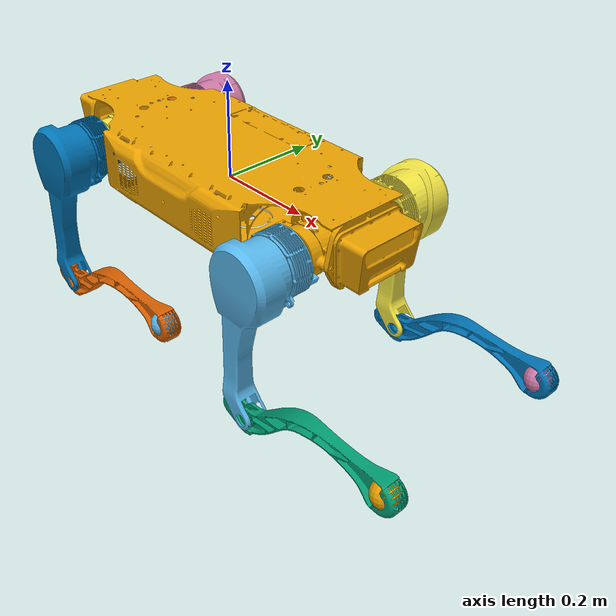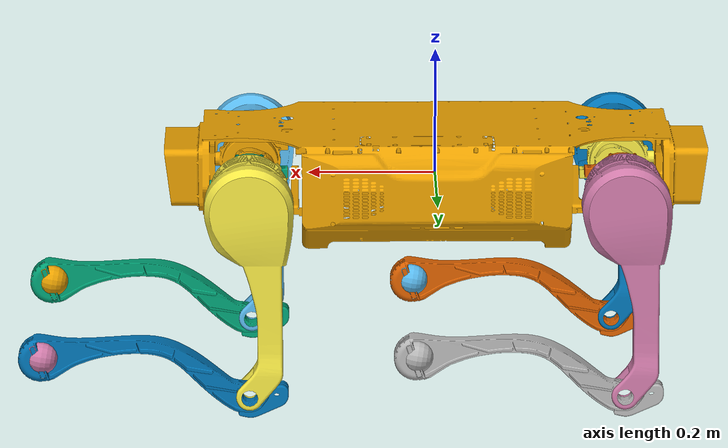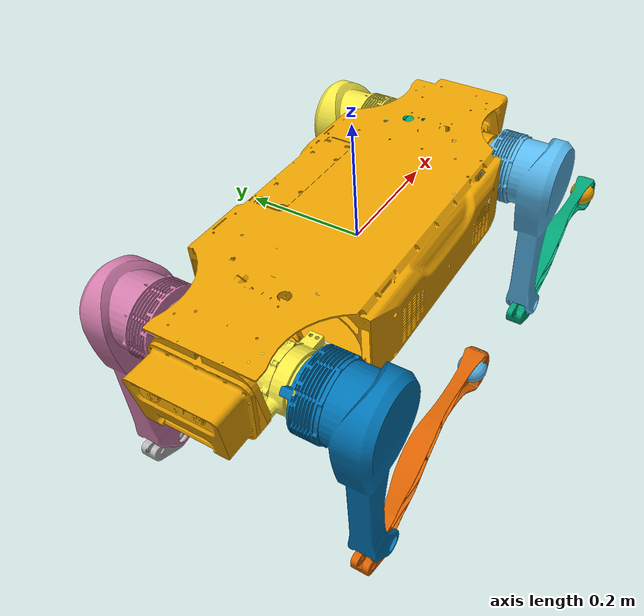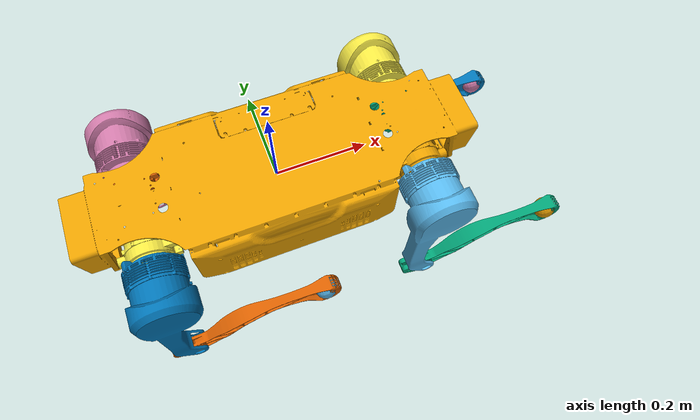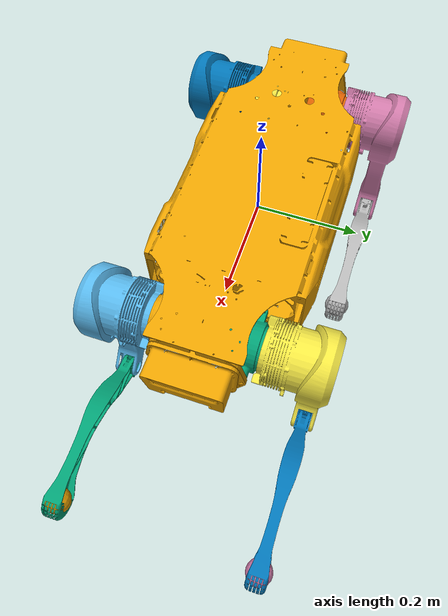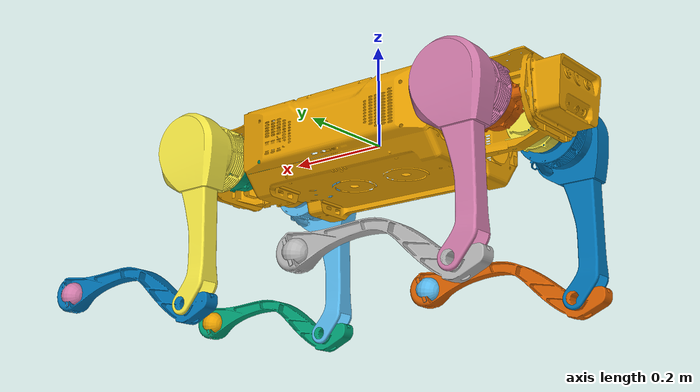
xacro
<?xml version="1.0" encoding="utf-8"?>
<robot name="x20" xmlns:xacro="http://www.ros.org/wiki/xacro">
  <xacro:property name="motor_damp" value="0.0"/>
  <xacro:property name="motor_fric" value="0.0"/>

  <xacro:include filename="$(find x20_description)/urdf/gazebo.xacro" />

  <link name="body">
    <inertial>
      <origin
        xyz="0.005 0.000413 0.004"
        rpy="0 0 0" />
      <mass
        value="26.398" />
      <inertia ixx="0.1632" ixy="-5.2136E-05" ixz="-0.00019406" iyy="0.40648" iyz="8.2679E-05" izz="0.52596" />
    </inertial>
    <visual>
      <geometry>
        <mesh
          filename="package://x20_description/meshes/x20_torso.stl" />
      </geometry>
    </visual>
    <collision name="body_collision">
      <geometry>
        <mesh
          filename="package://x20_description/meshes/x20_torso.stl" />
      </geometry>
    </collision>
  </link>

  <link name="imu_link">
    <inertial>
      <mass value="0.0000001"/>
      <origin rpy="0 0 0" xyz="0 0 0"/>
      <inertia ixx="0.0000000001" ixy="0" ixz="0" iyy="0.00000000001" iyz="0" izz="0.000000001"/>
    </inertial>
  <visual>
    <origin rpy="0 0 0" xyz="0 0 0"/>
    <geometry>
      <box size="0.001 0.001 0.001"/>
    </geometry>
  </visual>
 </link>
 <joint name="imu_joint" type="fixed">
    <axis xyz="0 0 0"/>
    <origin xyz="0 0 0"/>
    <parent link="body"/>
    <child link="imu_link"/>
  </joint>

  <link name="hip0">
    <inertial>
      <origin xyz="-0.00075689 -0.0089129 -5.0528E-05" />
      <mass value="1.5767" />
      <inertia ixx="0.0012141" ixy="6.1989E-06" ixz="2.8652E-06" iyy="0.0016912" iyz="3.7E-06" izz="0.0013431" />
    </inertial>
    <visual>
      <geometry>
        <mesh filename="package://x20_description/meshes/x20_fl_hip.stl" />
      </geometry>
    </visual>
    <collision name="hip0_collision">
      <geometry>
        <mesh filename="package://x20_description/meshes/x20_fl_hip.stl" />
      </geometry>
    </collision>
  </link>

  <joint name="8" type="revolute">
    <origin xyz="0.292 0.08 0" />
    <parent link="body" />
    <child link="hip0" />
    <axis xyz="1 0 0" />
    <limit
      lower="-0.38397"
      upper="0.38397"
      effort="126.1"
      velocity="12"  />
    <dynamics
      damping="${motor_damp}"
      friction="${motor_fric}" />
  </joint>

  <link name="upper0">
    <inertial>
      <origin xyz="-0.0025264 -0.022118 -0.0292" />
      <mass value="3.0063" />
      <inertia ixx="0.0058102" ixy="4.2848E-05" ixz="-3.0437E-06" iyy="0.0080686" iyz="-6.889E-05" izz="0.003874" />
    </inertial>
    <visual>
      <geometry>
        <mesh filename="package://x20_description/meshes/x20_l_thigh.stl" />
      </geometry>
    </visual>
    <collision name="upper0_collision">
      <geometry>
        <mesh filename="package://x20_description/meshes/x20_l_thigh.stl" />
      </geometry>
    </collision>
  </link>

  <joint name="0" type="revolute">
    <origin xyz="0 0.12325 0" />
    <parent link="hip0" />
    <child link="upper0" />
    <axis xyz="0 -1 0" />
    <limit
      lower="-2.75762"
      upper="0.48869"
      effort="111.4"
      velocity="19"/>
    <dynamics
      damping="${motor_damp}"
      friction="${motor_fric}" />
  </joint>

  <link name="lower0">
    <inertial>
      <origin xyz="0.0075224 2.5888E-05 -0.17586" />
      <mass value="0.54849" />
      <inertia ixx="0.0057" ixy="1.16E-07" ixz="0.000153" iyy="0.006" iyz="-1.12E-06" izz="0.00029" />
    </inertial>
    <visual>
      <geometry>
        <mesh filename="package://x20_description/meshes/x20_shank.stl" />
      </geometry>
    </visual>
    <collision name="lower0_collision">
      <geometry>
        <mesh filename="package://x20_description/meshes/x20_shank.stl" />
      </geometry>
    </collision>
  </link>

  <joint name="1" type="revolute">
    <origin xyz="0 0 -0.3" />
    <parent link="upper0" />
    <child link="lower0" />
    <axis xyz="0 -1 0" />
    <limit
      lower="0.66322"
      upper="2.84488"
      effort="195.8"
      velocity="19"  />
    <dynamics
      damping="${motor_damp}"
      friction="${motor_fric}" />
  </joint>

  <link name="hip1">
    <inertial>
      <origin xyz="0.000757 -0.009 5.053E-05" />
      <mass value="1.5767" />
      <inertia ixx="0.00121" ixy="-6.2E-06" ixz="2.9E-06" iyy="0.0017" iyz="-3.7E-06" izz="0.00134" />
    </inertial>
    <visual>
      <geometry>
        <mesh filename="package://x20_description/meshes/x20_hl_hip.stl" />
      </geometry>
    </visual>
    <collision name="hip1_collision">
      <geometry>
        <mesh filename="package://x20_description/meshes/x20_hl_hip.stl" />
      </geometry>
    </collision>
  </link>

  <joint name="9" type="revolute">
    <origin xyz="-0.292 0.08 0" />
    <parent link="body" />
    <child link="hip1" />
    <axis xyz="1 0 0" />
    <limit
      lower="-0.38397"
      upper="0.38397"
      effort="126.1"
      velocity="12"  />
    <dynamics
      damping="${motor_damp}"
      friction="${motor_fric}" />
  </joint>

  <link name="upper1">
    <inertial>
      <origin xyz="-0.0025264 -0.022118 -0.0292" />
      <mass value="3.0063" />
      <inertia ixx="0.0058102" ixy="4.2848E-05" ixz="-3.0433E-06" iyy="0.008" iyz="-6.8889E-05" izz="0.003874" />
    </inertial>
    <visual>
      <geometry>
        <mesh filename="package://x20_description/meshes/x20_l_thigh.stl" />
      </geometry>
    </visual>
    <collision name="upper1_collision">
      <geometry>
        <mesh filename="package://x20_description/meshes/x20_l_thigh.stl" />
      </geometry>
    </collision>
  </link>

  <joint name="2" type="revolute">
    <origin xyz="0 0.12325 0" />
    <parent link="hip1" />
    <child link="upper1" />
    <axis xyz="0 -1 0" />
    <limit
      lower="-2.75762"
      upper="0.48869"
      effort="111.4"
      velocity="19"/>
    <dynamics
      damping="${motor_damp}"
      friction="${motor_fric}" />
  </joint>

  <link name="lower1">
    <inertial>
      <origin xyz="0.0075224 2.5888E-05 -0.17586" />
      <mass value="0.54849" />
      <inertia ixx="0.0057" ixy="1.16E-07" ixz="0.000153" iyy="0.006" iyz="-1.12E-06" izz="0.00029" />
    </inertial>
    <visual>
      <geometry>
        <mesh filename="package://x20_description/meshes/x20_shank.stl" />
      </geometry>
    </visual>
    <collision name="lower1_collision">
      <geometry>
        <mesh filename="package://x20_description/meshes/x20_shank.stl" />
      </geometry>
    </collision>
  </link>

  <joint name="3" type="revolute">
    <origin xyz="0 0 -0.3" />
    <parent link="upper1" />
    <child link="lower1" />
    <axis xyz="0 -1 0" />
    <limit
      lower="0.66322"
      upper="2.84488"
      effort="195.8"
      velocity="19"  />
    <dynamics
      damping="${motor_damp}"
      friction="${motor_fric}" />
  </joint>

  <link name="hip2">
    <inertial>
      <origin xyz="-0.000757 0.009 5.0528E-05" />
      <mass value="1.5767" />
      <inertia ixx="0.0012141" ixy="-6.1989E-06" ixz="-2.8652E-06" iyy="0.0016912" iyz="3.7E-06" izz="0.0013431" />
    </inertial>
    <visual>
      <geometry>
        <mesh filename="package://x20_description/meshes/x20_fr_hip.stl" />
      </geometry>
    </visual>
    <collision>
      <geometry>
        <mesh filename="package://x20_description/meshes/x20_fr_hip.stl" />
      </geometry>
    </collision>
  </link>

  <joint name="10" type="revolute">
    <origin xyz="0.292 -0.08 0" />
    <parent link="body" />
    <child link="hip2" />
    <axis xyz="-1 0 0" />
    <limit
      lower="-0.38397"
      upper="0.38397"
      effort="126.1"
      velocity="12"  />
    <dynamics
      damping="${motor_damp}"
      friction="${motor_fric}" />
  </joint>

  <link name="upper2">
    <inertial>
      <origin xyz="-0.0025266 0.022119 -0.029194" />
      <mass value="3.0062" />
      <inertia ixx="0.00581" ixy="-4.2781E-05" ixz="-3.0682E-06" iyy="0.0080684" iyz="6.8812E-05" izz="0.0038739" />
    </inertial>
    <visual>
      <geometry>
        <mesh filename="package://x20_description/meshes/x20_r_thigh.stl" />
      </geometry>
    </visual>
    <collision>
      <geometry>
        <mesh filename="package://x20_description/meshes/x20_r_thigh.stl" />
      </geometry>
    </collision>
  </link>

  <joint name="4" type="revolute">
    <origin xyz="0 -0.12325 0" />
    <parent link="hip2" />
    <child link="upper2" />
    <axis xyz="0 -1 0" />
    <limit
      lower="-2.75762"
      upper="0.48869"
      effort="111.4"
      velocity="19"/>
    <dynamics
      damping="${motor_damp}"
      friction="${motor_fric}" />
  </joint>

  <link name="lower2">
    <inertial>
      <origin xyz="0.0075224 2.5888E-05 -0.17586" />
      <mass value="0.54849" />
      <inertia ixx="0.0057" ixy="1.16E-07" ixz="0.000153" iyy="0.006" iyz="-1.12E-06" izz="0.00029" />
    </inertial>
    <visual>
      <geometry>
        <mesh filename="package://x20_description/meshes/x20_shank.stl" />
      </geometry>
    </visual>
    <collision>
      <geometry>
        <mesh filename="package://x20_description/meshes/x20_shank.stl" />
      </geometry>
    </collision>
  </link>

  <joint name="5" type="revolute">
    <origin xyz="0 0 -0.3" />
    <parent link="upper2" />
    <child link="lower2" />
    <axis xyz="0 -1 0" />
    <limit
      lower="0.66322"
      upper="2.84488"
      effort="195.8"
      velocity="19"  />
    <dynamics
      damping="${motor_damp}"
      friction="${motor_fric}" />
  </joint>

  <link name="hip3">
    <inertial>
      <origin xyz="0.00075689 0.0089129 -5.0528E-05" />
      <mass value="1.5767" />
      <inertia ixx="0.0012141" ixy="6.1989E-06" ixz="-2.8652E-06" iyy="0.0016912" iyz="-3.7E-06" izz="0.0013431" />
    </inertial>
    <visual>
      <geometry>
        <mesh filename="package://x20_description/meshes/x20_hr_hip.stl" />
      </geometry>
    </visual>
    <collision>
      <geometry>
        <mesh filename="package://x20_description/meshes/x20_hr_hip.stl" />
      </geometry>
    </collision>
  </link>

  <joint name="11" type="revolute">
    <origin xyz="-0.292 -0.08 0" />
    <parent link="body" />
    <child link="hip3" />
    <axis xyz="-1 0 0" />
    <limit
      lower="-0.38397"
      upper="0.38397"
      effort="126.1"
      velocity="12"  />
    <dynamics
      damping="${motor_damp}"
      friction="${motor_fric}" />
  </joint>

  <link name="upper3">
    <inertial>
      <origin xyz="-0.0025266 0.022119 -0.029194" />
      <mass value="3.0062" />
      <inertia ixx="0.00581" ixy="-4.2781E-05" ixz="-3.0681E-06" iyy="0.0080684" iyz="6.8812E-05" izz="0.0038739" />
    </inertial>
    <visual>
      <geometry>
        <mesh filename="package://x20_description/meshes/x20_r_thigh.stl" />
      </geometry>
    </visual>
    <collision>
      <geometry>
        <mesh filename="package://x20_description/meshes/x20_r_thigh.stl" />
      </geometry>
    </collision>
  </link>

  <joint name="6" type="revolute">
    <origin xyz="0 -0.12325 0" />
    <parent link="hip3" />
    <child link="upper3" />
    <axis xyz="0 -1 0" />
    <limit
      lower="-2.75762"
      upper="0.48869"
      effort="111.4"
      velocity="19"/>
    <dynamics
      damping="${motor_damp}"
      friction="${motor_fric}" />
  </joint>

  <link name="lower3">
    <inertial>
      <origin xyz="0.0075224 2.589E-05 -0.17586" />
      <mass value="0.54849" />
      <inertia ixx="0.0056981" ixy="1.1608E-07" ixz="0.00015292" iyy="0.0059026" iyz="-1.1243E-06" izz="0.00028822" />
    </inertial>
    <visual>
      <geometry>
        <mesh filename="package://x20_description/meshes/x20_shank.stl" />
      </geometry>
    </visual>
    <collision>
      <geometry>
        <mesh filename="package://x20_description/meshes/x20_shank.stl" />
      </geometry>
    </collision>
  </link>

  <joint name="7" type="revolute">
    <origin xyz="0 0 -0.3" />
    <parent link="upper3" />
    <child link="lower3" />
    <axis xyz="0 -1 0" />
    <limit
      lower="0.66322"
      upper="2.84488"
      effort="195.8"
      velocity="19"  />
    <dynamics
      damping="${motor_damp}"
      friction="${motor_fric}" />
  </joint>

  <joint name="jtoe0" type="fixed">
    <origin xyz="0 0 -0.33" rpy = "0 0 0"/>
    <parent link="lower0"/>
    <child link="toe0"/>
  </joint>

  <joint name="jtoe1" type="fixed">
    <origin xyz="0 0 -0.33" rpy = "0 0 0"/>
    <parent link="lower1"/>
    <child link="toe1"/>
  </joint>

  <joint name="jtoe2" type="fixed">
    <origin xyz="0 0 -0.33" rpy = "0 0 0"/>
    <parent link="lower2"/>
    <child link="toe2"/>
  </joint>

  <joint name="jtoe3" type="fixed">
    <origin xyz="0 0 -0.33" rpy = "0 0 0"/>
    <parent link="lower3"/>
    <child link="toe3"/>
  </joint>

  <xacro:property name="foot_mass" value="0.001"/>
  <xacro:property name="foot_radius" value="0.036"/>
  <xacro:macro name="setup_foot" params="link_name">
    <link name="${link_name}">
        <visual>
            <origin rpy="0 0 0" xyz="0 0 0"/>
            <geometry>
                <sphere radius="${foot_radius-0.01}"/>
            </geometry>
        </visual>
        <collision name="${link_name}_collision">
            <origin rpy="0 0 0" xyz="0 0 0"/>
            <geometry>
                <sphere radius="${foot_radius}"/>
            </geometry>
              <surface>
                <bounce>
                    <restitution_coefficient>0</restitution_coefficient>
                    <threshold>1e+06</threshold>
                </bounce>
                <friction>
                    <ode>
                        <mu>0.2</mu>
                        <mu2>0.2</mu2>
                    </ode>
                    <bullet>
                        <rolling_friction>0.3</rolling_friction>
                        <friction2>50</friction2>
                    </bullet>
                </friction>
                <contact>
                    <ode>
                        <kp>30000.0</kp>
                        <kd>1000.0</kd>
                    </ode>
                    <bullet>
                        <kp>30000.0</kp>
                        <kd>1000.0</kd>
                        <split_impulse>1</split_impulse>
                        <split_impulse_penetration_threshold>-0.01</split_impulse_penetration_threshold>
                    </bullet>
                </contact>
            </surface>
         </collision>
        <inertial>
            <mass value="${foot_mass}"/>
            <inertia
                    ixx="${(2*foot_mass)/5.0*(foot_radius*foot_radius)}" ixy="0.0" ixz="0.0"
                    iyy="${(2*foot_mass)/5.0*(foot_radius*foot_radius)}" iyz="0.0"
                    izz="${(2*foot_mass)/5.0*(foot_radius*foot_radius)}"/>
        </inertial>
    </link>
  </xacro:macro>

  <xacro:setup_foot link_name="toe0"/>
  <xacro:setup_foot link_name="toe1"/>
  <xacro:setup_foot link_name="toe2"/>
  <xacro:setup_foot link_name="toe3"/>

  <!-- Link setup-->
  <xacro:macro name="link_setup_block" params="link_name">
    <gazebo reference="${link_name}">
      <mu1>0.6</mu1>
      <mu2>0.6</mu2>
      <self_collide>1</self_collide>
      <kp value="1000000.0"/>
      <kd value="100.0"/>
    </gazebo>
  </xacro:macro>
  <xacro:link_setup_block link_name="lower0"/>
  <xacro:link_setup_block link_name="lower1"/>
  <xacro:link_setup_block link_name="lower2"/>
  <xacro:link_setup_block link_name="lower3"/>

  <xacro:macro name="link_setup_block_hip" params="link_name">
    <gazebo reference="${link_name}">
      <mu1>0.2</mu1>
      <mu2>0.2</mu2>
    </gazebo>
  </xacro:macro>
  <xacro:macro name="link_setup_block_thight" params="link_name">
    <gazebo reference="${link_name}">
      <mu1>0.2</mu1>
      <mu2>0.2</mu2>
      <self_collide>0</self_collide>
      <kp value="1000000.0"/>
      <kd value="100.0"/>
    </gazebo>
  </xacro:macro>
  <xacro:link_setup_block_hip link_name="hip0"/>
  <xacro:link_setup_block_thight link_name="upper0"/>
  <xacro:link_setup_block_hip link_name="hip2"/>
  <xacro:link_setup_block_thight link_name="upper2"/>
  <xacro:link_setup_block_hip link_name="hip1"/>
  <xacro:link_setup_block_thight link_name="upper1"/>
  <xacro:link_setup_block_hip link_name="hip3"/>
  <xacro:link_setup_block_thight link_name="upper3"/>

  <xacro:include filename="$(find x20_description)/urdf/transmission.xacro" />

</robot>
